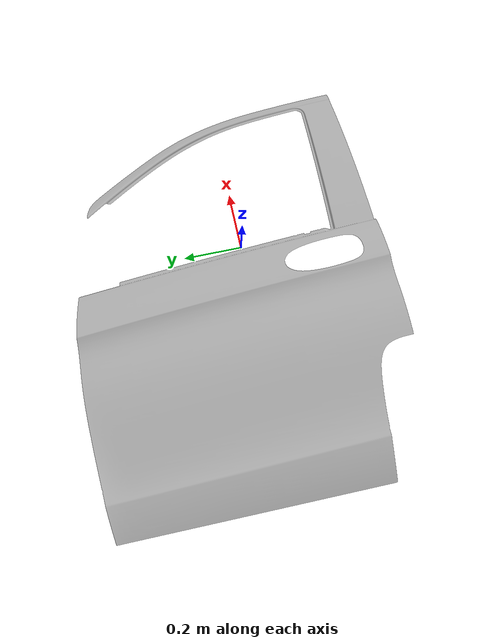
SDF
<?xml version="1.0" ?>
<sdf version="1.5">
  <model name="car_door">
    <static>true</static>
    <link name="body">
        <visual name="visual">
          <geometry>
            <mesh><uri>model://car_door/meshes/door_vito.stl</uri></mesh>
          </geometry>
        </visual>
        <collision name="collision">
          <geometry>
            <mesh><uri>model://car_door/meshes/door_vito.stl</uri></mesh>
          </geometry>
        </collision>
      </link>
  </model>
</sdf>
